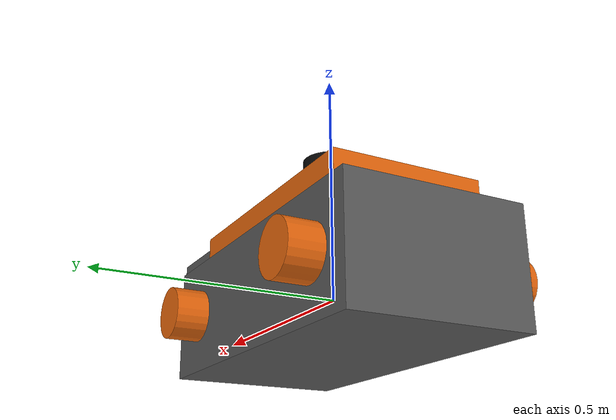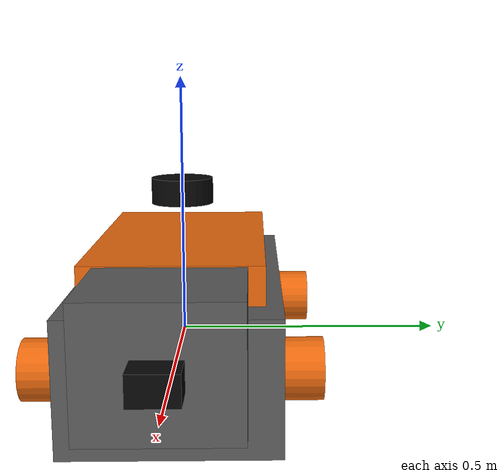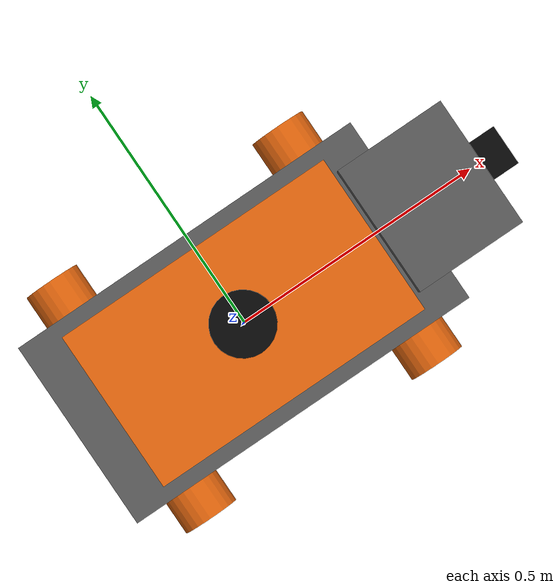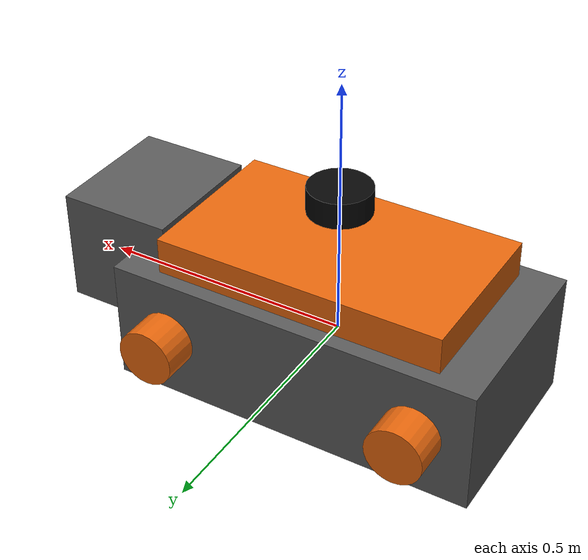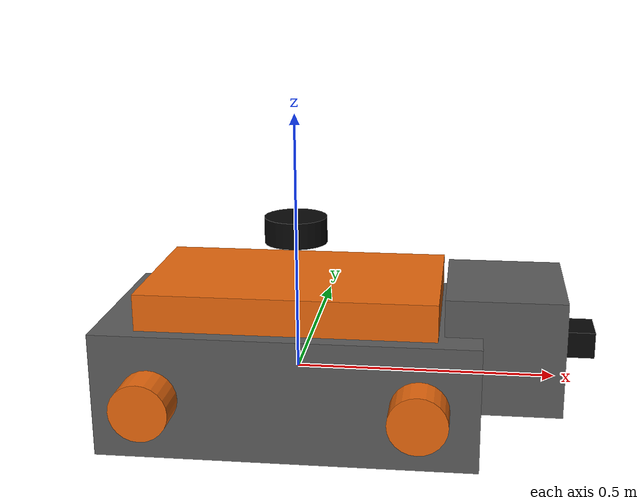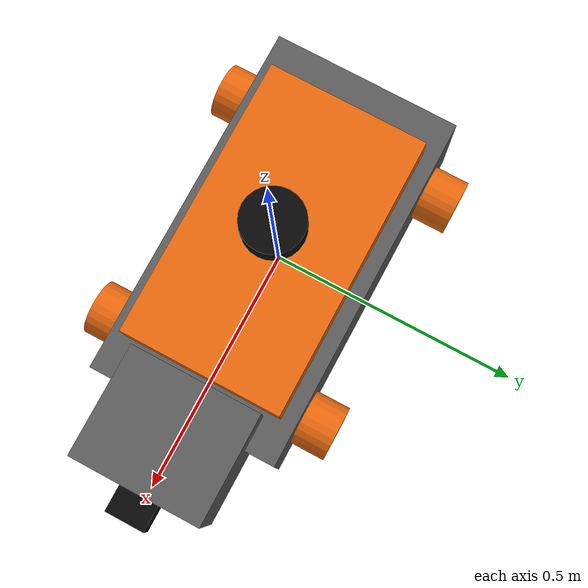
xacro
<?xml version="1.0"?>
<robot xmlns:xacro="http://www.ros.org/wiki/xacro" name="dog_robot">
  <material name="dog_grey">
    <color rgba="0.35 0.35 0.35 1.0"/>
  </material>
  <material name="dog_orange">
    <color rgba="0.9 0.4 0.05 1.0"/>
  </material>
  <material name="rubber">
    <color rgba="0.03 0.03 0.03 1.0"/>
  </material>

  <xacro:macro name="box_inertial" params="mass x y z">
    <inertial>
      <mass value="${mass}"/>
      <inertia ixx="${mass * (y*y + z*z) / 12}" ixy="0" ixz="0"
               iyy="${mass * (x*x + z*z) / 12}" iyz="0"
               izz="${mass * (x*x + y*y) / 12}"/>
    </inertial>
  </xacro:macro>

  <link name="base_link">
    <visual>
      <origin xyz="0 0 0" rpy="0 0 0"/>
      <geometry><box size="0.72 0.38 0.24"/></geometry>
      <material name="dog_grey"/>
    </visual>
    <collision>
      <geometry><box size="0.72 0.38 0.24"/></geometry>
    </collision>
    <xacro:box_inertial mass="18.0" x="0.72" y="0.38" z="0.24"/>
  </link>

  <link name="body_shell">
    <visual>
      <origin xyz="0 0 0.13" rpy="0 0 0"/>
      <geometry><box size="0.56 0.32 0.12"/></geometry>
      <material name="dog_orange"/>
    </visual>
    <collision>
      <origin xyz="0 0 0.13" rpy="0 0 0"/>
      <geometry><box size="0.56 0.32 0.12"/></geometry>
    </collision>
    <xacro:box_inertial mass="2.0" x="0.56" y="0.32" z="0.12"/>
  </link>

  <joint name="body_shell_fixed" type="fixed">
    <parent link="base_link"/>
    <child link="body_shell"/>
    <origin xyz="0 0 0" rpy="0 0 0"/>
  </joint>

  <link name="head_link">
    <visual>
      <geometry><box size="0.22 0.26 0.22"/></geometry>
      <material name="dog_grey"/>
    </visual>
    <collision><geometry><box size="0.22 0.26 0.22"/></geometry></collision>
    <xacro:box_inertial mass="2.0" x="0.22" y="0.26" z="0.22"/>
  </link>

  <joint name="neck_joint" type="revolute">
    <parent link="base_link"/>
    <child link="head_link"/>
    <origin xyz="0.40 0 0.08" rpy="0 0 0"/>
    <axis xyz="0 0 1"/>
    <limit lower="-0.7" upper="0.7" effort="20" velocity="2"/>
  </joint>

  <link name="lidar_link">
    <visual>
      <geometry><cylinder radius="0.06" length="0.05"/></geometry>
      <material name="rubber"/>
    </visual>
    <collision><geometry><cylinder radius="0.06" length="0.05"/></geometry></collision>
    <xacro:box_inertial mass="0.2" x="0.1" y="0.1" z="0.05"/>
  </link>

  <joint name="lidar_fixed" type="fixed">
    <parent link="base_link"/>
    <child link="lidar_link"/>
    <origin xyz="0 0 0.28" rpy="0 0 0"/>
  </joint>

  <link name="camera_link">
    <visual>
      <geometry><box size="0.06 0.08 0.05"/></geometry>
      <material name="rubber"/>
    </visual>
    <collision><geometry><box size="0.06 0.08 0.05"/></geometry></collision>
    <xacro:box_inertial mass="0.1" x="0.06" y="0.08" z="0.05"/>
  </link>

  <joint name="camera_fixed" type="fixed">
    <parent link="head_link"/>
    <child link="camera_link"/>
    <origin xyz="0.14 0 0" rpy="0 0 0"/>
  </joint>

  <xacro:macro name="leg" params="prefix x y">
    <link name="${prefix}_hip">
      <visual>
        <geometry><cylinder radius="0.055" length="0.12"/></geometry>
        <material name="dog_orange"/>
      </visual>
      <collision><geometry><cylinder radius="0.055" length="0.12"/></geometry></collision>
      <xacro:box_inertial mass="0.6" x="0.12" y="0.12" z="0.12"/>
    </link>
    <joint name="${prefix}_hip_joint" type="revolute">
      <parent link="base_link"/>
      <child link="${prefix}_hip"/>
      <origin xyz="${x} ${y} 0" rpy="1.5708 0 0"/>
      <axis xyz="0 0 1"/>
      <limit lower="-1.1" upper="1.1" effort="60" velocity="5"/>
    </joint>
  </xacro:macro>

  <xacro:leg prefix="front_left" x="0.25" y="0.20"/>
  <xacro:leg prefix="front_right" x="0.25" y="-0.20"/>
  <xacro:leg prefix="rear_left" x="-0.25" y="0.20"/>
  <xacro:leg prefix="rear_right" x="-0.25" y="-0.20"/>
</robot>
